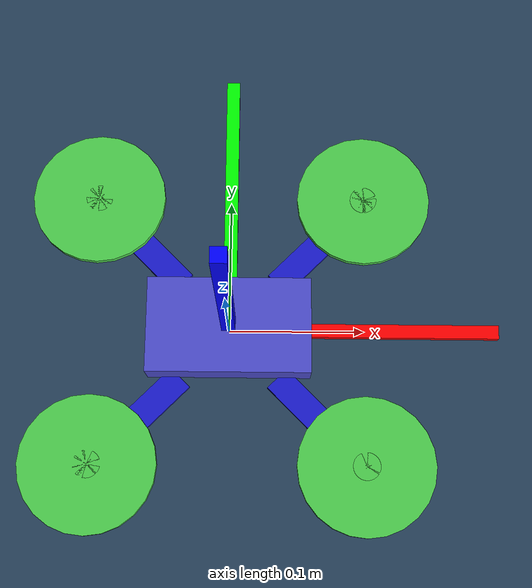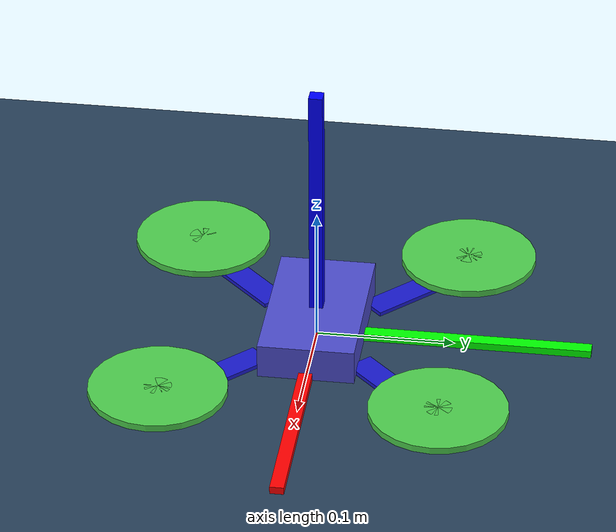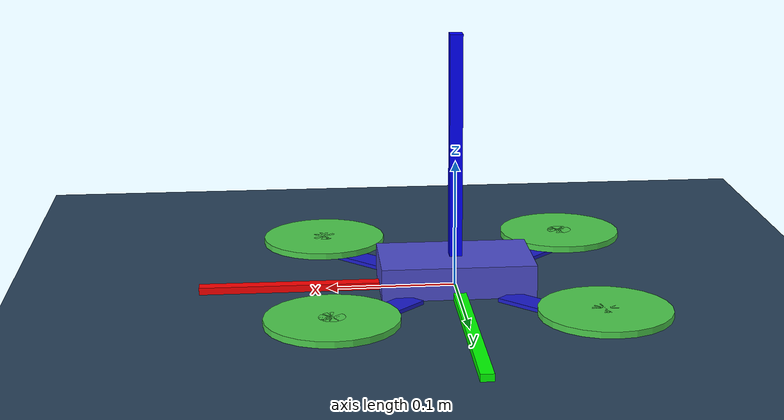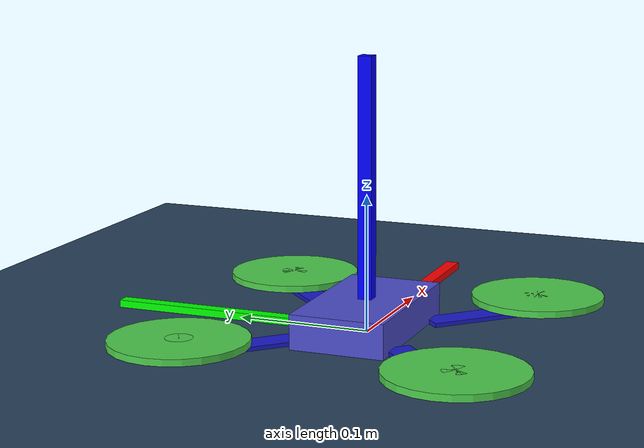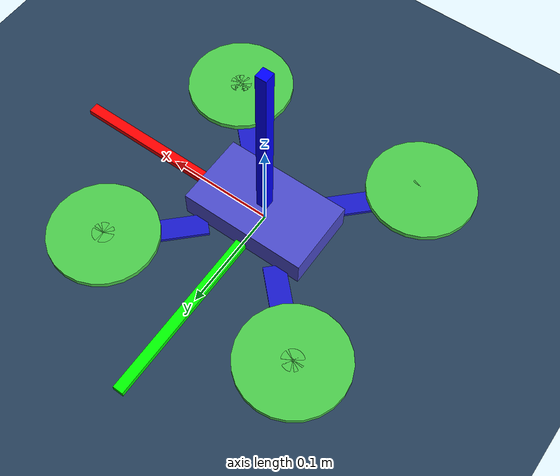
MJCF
<mujoco model="quadrotor0">
	<compiler inertiafromgeom="true" coordinate="local"/>
	<option	timestep="0.01" gravity="0 0 -9.81" density="1" viscosity="1e-5" />
	<visual>
        <rgba haze="0.5 0.5 0.5 1"/>
        <global offwidth="1920" offheight="1080" elevation="-20" azimuth="120"/>
    </visual>

    <asset>
        <texture type="skybox" builtin="gradient" rgb1="0.4 0.6 0.8" rgb2="0 0 0" width="32" height="512"/>
        <texture name="grid" type="2d" builtin="checker" rgb1="0.2 0.3 0.4" rgb2="0.1 0.2 0.3" width="512" height="512"/>
        <material name="grid" texture="grid" texrepeat="1 1" texuniform="true" reflectance="0.2"/>
    </asset>
	<worldbody>
		<geom name="floor" size="0 0 0.01" type="plane" material="grid" condim="1" solref="1 0.1"/>
        <light name="floorlight" mode="fixed" pos="0 0 50" dir="0 0 -1" diffuse="0.8 0.8 0.8" specular="0.3 0.3 0.3"/>
		<body name="quadrotor" pos="0 0 0" >
			<geom name="core" type="box" pos="0 0 0" quat = "1. 0. 0. 0" size="0.06 0.035 0.025"  rgba="0.3 0.3 0.8 1" mass = ".1"/>

			<geom name="a00" type="box" pos=".071 0.071 0.0" size="0.05 0.01 0.0025"  quat = ".924 0.0 0.0 0.383" rgba="0.1 0.1 0.8 1" mass = ".025"/>
			<geom name="a10" type="box" pos=".071 -0.071 0.0" size="0.05 0.01 0.0025"  quat = ".383 0.0 0.0 0.924" rgba="0.1 0.1 0.8 1" mass = ".025"/>
			<geom name="a20" type="box" pos="-0.071 -0.071 0.0" size="0.05 0.01 0.0025"  quat = "-.383 0.0 0.0 0.924" rgba="0.1 0.1 0.8 1" mass = ".025"/>
			<geom name="a30" type="box" pos="-.071 0.071 0.0" size="0.05 0.01 0.0025"  quat = ".924 0.0 0.0 -0.383" rgba="0.1 0.1 0.8 1" mass = ".025"/>

			<joint name="root"   type="free" damping="0" armature="0" pos="0 0 0" />

			<!-- Motor sites to attach motor actuators -->
            <site name="motor0" type="cylinder" pos=" 0.1  0.1 0.01"  size="0.01 0.0025"  quat = "1.0 0.0 0.0 0." rgba="0.3 0.8 0.3 1"/>
            <site name="motor1" type="cylinder" pos=" 0.1 -0.1 0.01"  size="0.01 0.0025"  quat = "1.0 0.0 0.0 0." rgba="0.3 0.8 0.3 1"/>
            <site name="motor2" type="cylinder" pos="-0.1 -0.1 0.01"  size="0.01 0.0025"  quat = "1.0 0.0 0.0 0." rgba="0.3 0.8 0.3 1"/>
            <site name="motor3" type="cylinder" pos="-0.1  0.1 0.01"  size="0.01 0.0025"  quat = "1.0 0.0 0.0 0." rgba="0.3 0.8 0.3 1"/>

			<!-- Thruster geometries for collisions since site's are excluded from collision checking -->
            <geom name="thruster0" type="cylinder" pos=" 0.1  0.1  0.01" size="0.05 0.0025"  quat = "1.0 0.0 0.0 0." rgba="0.3 0.8 0.3 1" mass = ".025"/>
            <geom name="thruster1" type="cylinder" pos=" 0.1 -0.1  0.01" size="0.05 0.0025"  quat = "1.0 0.0 0.0 0." rgba="0.3 0.8 0.3 1" mass = ".025"/>
            <geom name="thruster2" type="cylinder" pos="-0.1 -0.1  0.01" size="0.05 0.0025"  quat = "1.0 0.0 0.0 0." rgba="0.3 0.8 0.3 1" mass = ".025"/>
            <geom name="thruster3" type="cylinder" pos="-0.1  0.1  0.01" size="0.05 0.0025"  quat = "1.0 0.0 0.0 0." rgba="0.3 0.8 0.3 1" mass = ".025"/>

            <!-- Visualization of the coordinate frame -->
			<site name="qcX" type="box" pos="0.1 0.0 0.0" size="0.1 0.005 0.005"  quat = " 1.000  0.0  0.0    0."     rgba="1 0 0 1" />
			<site name="qcY" type="box" pos="0.0 0.1 0.0" size="0.1 0.005 0.005"  quat = " 0.707  0.0  0.0    0.707"  rgba="0 1 0 1" />
			<site name="qcZ" type="box" pos="0.0 0.0 0.1" size="0.1 0.005 0.005"  quat = "-0.707  0.0  0.707  0."     rgba="0 0 1 1" />
		</body>
	</worldbody>
    <actuator>
        <motor ctrllimited="true" ctrlrange="0.0 1.0" gear="0  0. 1. 0. 0. -0.1" site="motor0"/>
        <motor ctrllimited="true" ctrlrange="0.0 1.0" gear="0  0. 1. 0. 0.  0.1" site="motor1"/>
        <motor ctrllimited="true" ctrlrange="0.0 1.0" gear="0  0. 1. 0. 0. -0.1" site="motor2"/>
        <motor ctrllimited="true" ctrlrange="0.0 1.0" gear="0  0. 1. 0. 0.  0.1" site="motor3"/>
	</actuator>
</mujoco>
